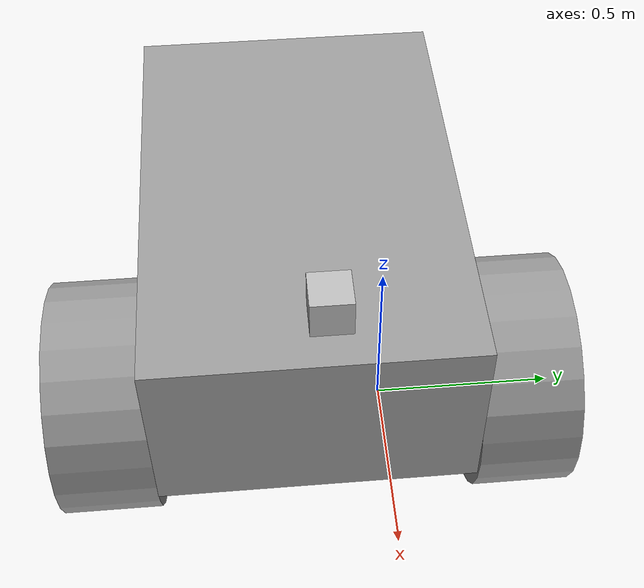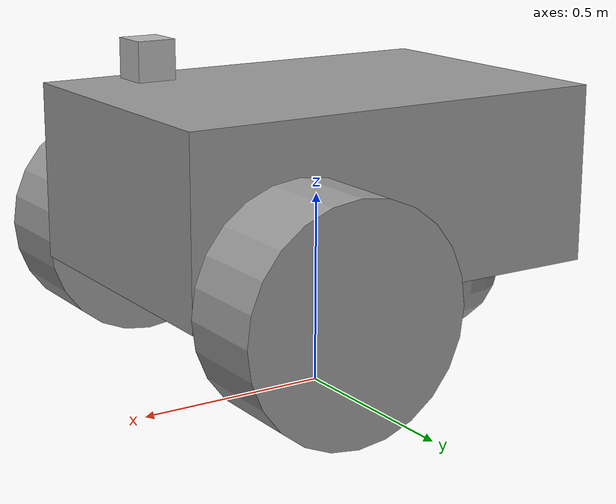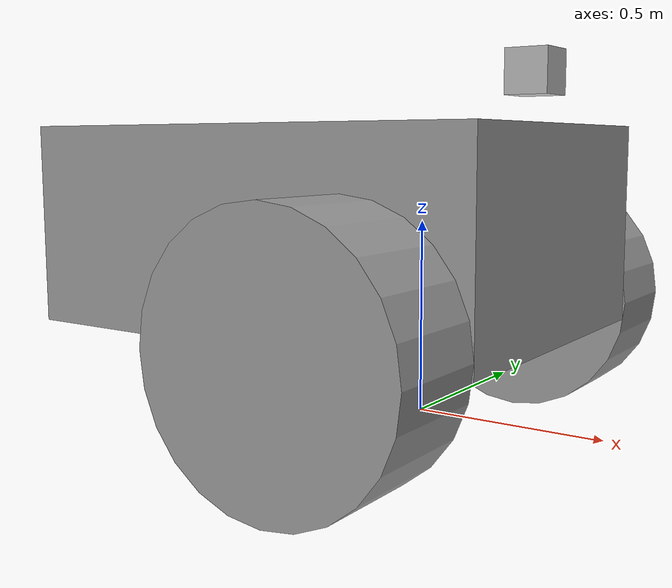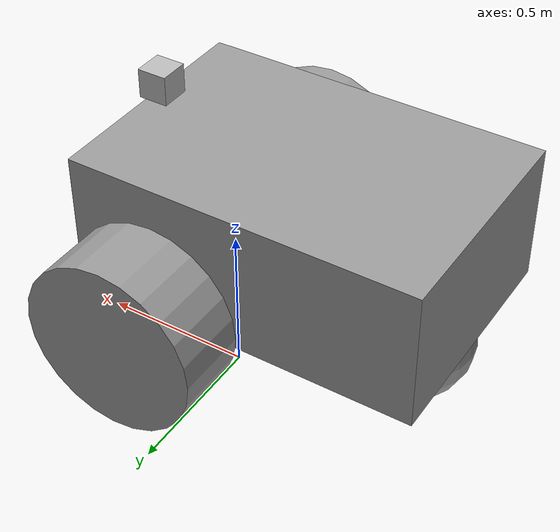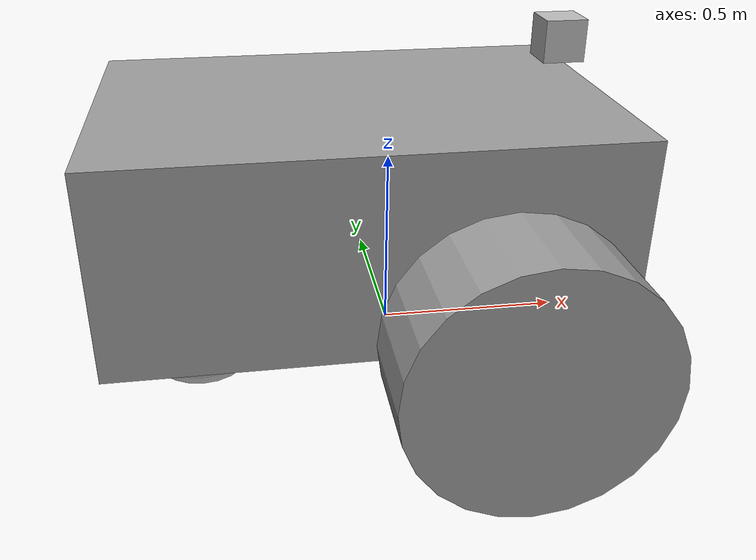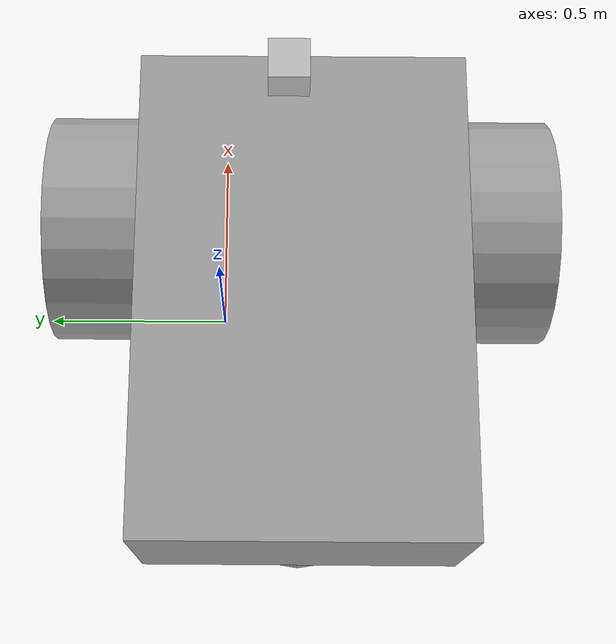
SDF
<?xml version='1.0'?>
<sdf version='1.6'>
  <model name='follower-vehicle'>
    <link name='link_0'>
      <inertial>
        <mass>1</mass>
        <inertia>
          <ixx>0.145833</ixx>
          <ixy>0</ixy>
          <ixz>0</ixz>
          <iyy>0.145833</iyy>
          <iyz>0</iyz>
          <izz>0.125</izz>
        </inertia>
        <pose frame=''>0 0 0 0 -0 0</pose>
      </inertial>
      <pose frame=''>0.169722 -0.735299 0.3 1.5707 -0 0</pose>
      <gravity>1</gravity>
      <self_collide>0</self_collide>
      <kinematic>0</kinematic>
      <enable_wind>0</enable_wind>
      <visual name='visual'>
        <pose frame=''>0 0 0 0 -0 0</pose>
        <geometry>
          <cylinder>
            <radius>0.3</radius>
            <length>0.25</length>
          </cylinder>
        </geometry>
        <material>
          <lighting>1</lighting>
          <script>
            <uri>file://media/materials/scripts/gazebo.material</uri>
            <name>Gazebo/Grey</name>
          </script>
          <shader type='vertex'>
            <normal_map>__default__</normal_map>
          </shader>
          <ambient>0.3 0.3 0.3 1</ambient>
          <diffuse>0.7 0.7 0.7 1</diffuse>
          <specular>0.01 0.01 0.01 1</specular>
          <emissive>0 0 0 1</emissive>
        </material>
        <transparency>0</transparency>
        <cast_shadows>1</cast_shadows>
      </visual>
      <collision name='collision'>
        <laser_retro>0</laser_retro>
        <max_contacts>10</max_contacts>
        <pose frame=''>0 0 0 0 -0 0</pose>
        <geometry>
          <cylinder>
            <radius>0.3</radius>
            <length>0.25</length>
          </cylinder>
        </geometry>
        <surface>
          <friction>
            <ode>
              <mu>1</mu>
              <mu2>1</mu2>
              <fdir1>0 0 0</fdir1>
              <slip1>0</slip1>
              <slip2>0</slip2>
            </ode>
            <torsional>
              <coefficient>1</coefficient>
              <patch_radius>0</patch_radius>
              <surface_radius>0</surface_radius>
              <use_patch_radius>1</use_patch_radius>
              <ode>
                <slip>0</slip>
              </ode>
            </torsional>
          </friction>
          <bounce>
            <restitution_coefficient>0</restitution_coefficient>
            <threshold>1e+06</threshold>
          </bounce>
          <contact>
            <collide_without_contact>0</collide_without_contact>
            <collide_without_contact_bitmask>1</collide_without_contact_bitmask>
            <collide_bitmask>1</collide_bitmask>
            <ode>
              <soft_cfm>0</soft_cfm>
              <soft_erp>0.2</soft_erp>
              <kp>1e+13</kp>
              <kd>1</kd>
              <max_vel>0.01</max_vel>
              <min_depth>0</min_depth>
            </ode>
            <bullet>
              <split_impulse>1</split_impulse>
              <split_impulse_penetration_threshold>-0.01</split_impulse_penetration_threshold>
              <soft_cfm>0</soft_cfm>
              <soft_erp>0.2</soft_erp>
              <kp>1e+13</kp>
              <kd>1</kd>
            </bullet>
          </contact>
        </surface>
      </collision>
    </link>
    <link name='link_0_clone'>
      <inertial>
        <mass>1</mass>
        <inertia>
          <ixx>0.145833</ixx>
          <ixy>0</ixy>
          <ixz>0</ixz>
          <iyy>0.145833</iyy>
          <iyz>0</iyz>
          <izz>0.125</izz>
        </inertia>
        <pose frame=''>0 0 0 0 -0 0</pose>
      </inertial>
      <pose frame=''>0.174305 0.321493 0.299999 1.5707 -0 0</pose>
      <gravity>1</gravity>
      <self_collide>0</self_collide>
      <kinematic>0</kinematic>
      <enable_wind>0</enable_wind>
      <visual name='visual'>
        <pose frame=''>0 0 0 0 -0 0</pose>
        <geometry>
          <cylinder>
            <radius>0.3</radius>
            <length>0.25</length>
          </cylinder>
        </geometry>
        <material>
          <lighting>1</lighting>
          <script>
            <uri>file://media/materials/scripts/gazebo.material</uri>
            <name>Gazebo/Grey</name>
          </script>
          <shader type='vertex'>
            <normal_map>__default__</normal_map>
          </shader>
          <ambient>0.3 0.3 0.3 1</ambient>
          <diffuse>0.7 0.7 0.7 1</diffuse>
          <specular>0.01 0.01 0.01 1</specular>
          <emissive>0 0 0 1</emissive>
        </material>
        <transparency>0</transparency>
        <cast_shadows>1</cast_shadows>
      </visual>
      <collision name='collision'>
        <laser_retro>0</laser_retro>
        <max_contacts>10</max_contacts>
        <pose frame=''>0 0 0 0 -0 0</pose>
        <geometry>
          <cylinder>
            <radius>0.3</radius>
            <length>0.25</length>
          </cylinder>
        </geometry>
        <surface>
          <friction>
            <ode>
              <mu>1</mu>
              <mu2>1</mu2>
              <fdir1>0 0 0</fdir1>
              <slip1>0</slip1>
              <slip2>0</slip2>
            </ode>
            <torsional>
              <coefficient>1</coefficient>
              <patch_radius>0</patch_radius>
              <surface_radius>0</surface_radius>
              <use_patch_radius>1</use_patch_radius>
              <ode>
                <slip>0</slip>
              </ode>
            </torsional>
          </friction>
          <bounce>
            <restitution_coefficient>0</restitution_coefficient>
            <threshold>1e+06</threshold>
          </bounce>
          <contact>
            <collide_without_contact>0</collide_without_contact>
            <collide_without_contact_bitmask>1</collide_without_contact_bitmask>
            <collide_bitmask>1</collide_bitmask>
            <ode>
              <soft_cfm>0</soft_cfm>
              <soft_erp>0.2</soft_erp>
              <kp>1e+13</kp>
              <kd>1</kd>
              <max_vel>0.01</max_vel>
              <min_depth>0</min_depth>
            </ode>
            <bullet>
              <split_impulse>1</split_impulse>
              <split_impulse_penetration_threshold>-0.01</split_impulse_penetration_threshold>
              <soft_cfm>0</soft_cfm>
              <soft_erp>0.2</soft_erp>
              <kp>1e+13</kp>
              <kd>1</kd>
            </bullet>
          </contact>
        </surface>
      </collision>
    </link>
    <link name='link_1'>
      <inertial>
        <mass>0.460665</mass>
        <inertia>
          <ixx>0.0336084</ixx>
          <ixy>0</ixy>
          <ixz>0</ixz>
          <iyy>0.0636902</iyy>
          <iyz>0</iyz>
          <izz>0.0796309</izz>
        </inertia>
        <pose frame=''>0 0 0.4 0 -0 0</pose>
      </inertial>
      <pose frame=''>-0.127978 -0.208591 0.5 0 -0 0</pose>
      <gravity>1</gravity>
      <self_collide>0</self_collide>
      <kinematic>0</kinematic>
      <enable_wind>0</enable_wind>
      <visual name='visual'>
        <pose frame=''>0 0 0 0 -0 0</pose>
        <geometry>
          <box>
            <size>1.1954 0.803358 0.479705</size>
          </box>
        </geometry>
        <material>
          <lighting>1</lighting>
          <script>
            <uri>file://media/materials/scripts/gazebo.material</uri>
            <name>Gazebo/Grey</name>
          </script>
          <shader type='vertex'>
            <normal_map>__default__</normal_map>
          </shader>
          <ambient>0.3 0.3 0.3 1</ambient>
          <diffuse>0.7 0.7 0.7 1</diffuse>
          <specular>0.01 0.01 0.01 1</specular>
          <emissive>0 0 0 1</emissive>
        </material>
        <transparency>0</transparency>
        <cast_shadows>1</cast_shadows>
      </visual>
      <collision name='collision'>
        <laser_retro>0</laser_retro>
        <max_contacts>10</max_contacts>
        <pose frame=''>0 0 0 0 -0 0</pose>
        <geometry>
          <box>
            <size>1.1954 0.803358 0.479705</size>
          </box>
        </geometry>
        <surface>
          <friction>
            <ode>
              <mu>1</mu>
              <mu2>1</mu2>
              <fdir1>0 0 0</fdir1>
              <slip1>0</slip1>
              <slip2>0</slip2>
            </ode>
            <torsional>
              <coefficient>1</coefficient>
              <patch_radius>0</patch_radius>
              <surface_radius>0</surface_radius>
              <use_patch_radius>1</use_patch_radius>
              <ode>
                <slip>0</slip>
              </ode>
            </torsional>
          </friction>
          <bounce>
            <restitution_coefficient>0</restitution_coefficient>
            <threshold>1e+06</threshold>
          </bounce>
          <contact>
            <collide_without_contact>0</collide_without_contact>
            <collide_without_contact_bitmask>1</collide_without_contact_bitmask>
            <collide_bitmask>1</collide_bitmask>
            <ode>
              <soft_cfm>0</soft_cfm>
              <soft_erp>0.2</soft_erp>
              <kp>1e+13</kp>
              <kd>1</kd>
              <max_vel>0.01</max_vel>
              <min_depth>0</min_depth>
            </ode>
            <bullet>
              <split_impulse>1</split_impulse>
              <split_impulse_penetration_threshold>-0.01</split_impulse_penetration_threshold>
              <soft_cfm>0</soft_cfm>
              <soft_erp>0.2</soft_erp>
              <kp>1e+13</kp>
              <kd>1</kd>
            </bullet>
          </contact>
        </surface>
      </collision>
    </link>
    <link name='link_1_0'>
      <inertial>
        <mass>1</mass>
        <inertia>
          <ixx>0.1</ixx>
          <ixy>0</ixy>
          <ixz>0</ixz>
          <iyy>0.1</iyy>
          <iyz>0</iyz>
          <izz>0.1</izz>
        </inertia>
        <pose frame=''>0 0 0 0 -0 0</pose>
      </inertial>
      <pose frame=''>-0.526841 -0.20634 0.200007 0 -0 0</pose>
      <gravity>1</gravity>
      <self_collide>0</self_collide>
      <kinematic>0</kinematic>
      <enable_wind>0</enable_wind>
      <visual name='visual'>
        <pose frame=''>0 0 0 0 -0 0</pose>
        <geometry>
          <sphere>
            <radius>0.2</radius>
          </sphere>
        </geometry>
        <material>
          <lighting>1</lighting>
          <script>
            <uri>file://media/materials/scripts/gazebo.material</uri>
            <name>Gazebo/Grey</name>
          </script>
          <shader type='vertex'>
            <normal_map>__default__</normal_map>
          </shader>
          <ambient>0.3 0.3 0.3 1</ambient>
          <diffuse>0.7 0.7 0.7 1</diffuse>
          <specular>0.01 0.01 0.01 1</specular>
          <emissive>0 0 0 1</emissive>
        </material>
        <transparency>0</transparency>
        <cast_shadows>1</cast_shadows>
      </visual>
      <collision name='collision'>
        <laser_retro>0</laser_retro>
        <max_contacts>10</max_contacts>
        <pose frame=''>0 0 0 0 -0 0</pose>
        <geometry>
          <sphere>
            <radius>0.2</radius>
          </sphere>
        </geometry>
        <surface>
          <friction>
            <ode>
              <mu>1</mu>
              <mu2>1</mu2>
              <fdir1>0 0 0</fdir1>
              <slip1>0</slip1>
              <slip2>0</slip2>
            </ode>
            <torsional>
              <coefficient>1</coefficient>
              <patch_radius>0</patch_radius>
              <surface_radius>0</surface_radius>
              <use_patch_radius>1</use_patch_radius>
              <ode>
                <slip>0</slip>
              </ode>
            </torsional>
          </friction>
          <bounce>
            <restitution_coefficient>0</restitution_coefficient>
            <threshold>1e+06</threshold>
          </bounce>
          <contact>
            <collide_without_contact>0</collide_without_contact>
            <collide_without_contact_bitmask>1</collide_without_contact_bitmask>
            <collide_bitmask>1</collide_bitmask>
            <ode>
              <soft_cfm>0</soft_cfm>
              <soft_erp>0.2</soft_erp>
              <kp>1e+13</kp>
              <kd>1</kd>
              <max_vel>0.01</max_vel>
              <min_depth>0</min_depth>
            </ode>
            <bullet>
              <split_impulse>1</split_impulse>
              <split_impulse_penetration_threshold>-0.01</split_impulse_penetration_threshold>
              <soft_cfm>0</soft_cfm>
              <soft_erp>0.2</soft_erp>
              <kp>1e+13</kp>
              <kd>1</kd>
            </bullet>
          </contact>
        </surface>
      </collision>
    </link>
    <model name='depth_camera'>
      <link name='link'>
        <pose frame=''>0 0 0.05 0 -0 0</pose>
        <inertial>
          <mass>0.1</mass>
          <inertia>
            <ixx>0.000166667</ixx>
            <iyy>0.000166667</iyy>
            <izz>0.000166667</izz>
            <ixy>0</ixy>
            <ixz>0</ixz>
            <iyz>0</iyz>
          </inertia>
        </inertial>
        <collision name='collision'>
          <geometry>
            <box>
              <size>0.1 0.1 0.1</size>
            </box>
          </geometry>
          <max_contacts>10</max_contacts>
          <surface>
            <contact>
              <ode/>
            </contact>
            <bounce/>
            <friction>
              <torsional>
                <ode/>
              </torsional>
              <ode/>
            </friction>
          </surface>
        </collision>
        <visual name='visual'>
          <geometry>
            <box>
              <size>0.1 0.1 0.1</size>
            </box>
          </geometry>
        </visual>
        <sensor name='camera' type='depth'>
          <camera name='__default__'>
            <horizontal_fov>1.047</horizontal_fov>
            <image>
              <width>320</width>
              <height>240</height>
            </image>
            <clip>
              <near>0.1</near>
              <far>100</far>
            </clip>
          </camera>
          <always_on>1</always_on>
          <update_rate>30</update_rate>
          <visualize>1</visualize>
        </sensor>
        <self_collide>0</self_collide>
        <enable_wind>0</enable_wind>
        <kinematic>0</kinematic>
      </link>
      <pose frame=''>0.381627 -0.17197 0.802055 0 -0 0</pose>
    </model>
    <joint name='link_1_JOINT_0_0' type='fixed'>
      <parent>link_1</parent>
      <child>depth_camera::link</child>
      <pose frame=''>0 0 0 0 -0 0</pose>
      <physics>
        <ode>
          <limit>
            <cfm>0</cfm>
            <erp>0.2</erp>
          </limit>
          <suspension>
            <cfm>0</cfm>
            <erp>0.2</erp>
          </suspension>
        </ode>
      </physics>
    </joint>
    <joint name='link_1_JOINT_0' type='ball'>
      <parent>link_1</parent>
      <child>link_1_0</child>
      <pose frame=''>0 0 0 0 -0 0</pose>
      <physics>
        <ode>
          <limit>
            <cfm>0</cfm>
            <erp>0.2</erp>
          </limit>
          <suspension>
            <cfm>0</cfm>
            <erp>0.2</erp>
          </suspension>
        </ode>
      </physics>
    </joint>
    <joint name='link_1_JOINT_1_0' type='revolute'>
      <parent>link_1</parent>
      <child>link_0_clone</child>
      <pose frame=''>0 0 0 0 -0 0</pose>
      <axis>
        <xyz>0 0 1</xyz>
        <use_parent_model_frame>0</use_parent_model_frame>
        <limit>
          <lower>-1.79769e+308</lower>
          <upper>1.79769e+308</upper>
          <effort>-1</effort>
          <velocity>-1</velocity>
        </limit>
        <dynamics>
          <spring_reference>0</spring_reference>
          <spring_stiffness>0</spring_stiffness>
          <damping>0</damping>
          <friction>0</friction>
        </dynamics>
      </axis>
      <physics>
        <ode>
          <limit>
            <cfm>0</cfm>
            <erp>0.2</erp>
          </limit>
          <suspension>
            <cfm>0</cfm>
            <erp>0.2</erp>
          </suspension>
        </ode>
      </physics>
    </joint>
    <joint name='link_1_JOINT_1' type='revolute'>
      <parent>link_1</parent>
      <child>link_0</child>
      <pose frame=''>0 0 0 0 -0 0</pose>
      <axis>
        <xyz>0 0 1</xyz>
        <use_parent_model_frame>0</use_parent_model_frame>
        <limit>
          <lower>-1.79769e+308</lower>
          <upper>1.79769e+308</upper>
          <effort>-1</effort>
          <velocity>-1</velocity>
        </limit>
        <dynamics>
          <spring_reference>0</spring_reference>
          <spring_stiffness>0</spring_stiffness>
          <damping>0</damping>
          <friction>0</friction>
        </dynamics>
      </axis>
      <physics>
        <ode>
          <limit>
            <cfm>0</cfm>
            <erp>0.2</erp>
          </limit>
          <suspension>
            <cfm>0</cfm>
            <erp>0.2</erp>
          </suspension>
        </ode>
      </physics>
    </joint>
    <static>0</static>
    <allow_auto_disable>1</allow_auto_disable>
    <plugin name='follower' filename='libFollowerPlugin.so'/>
  </model>
</sdf>
